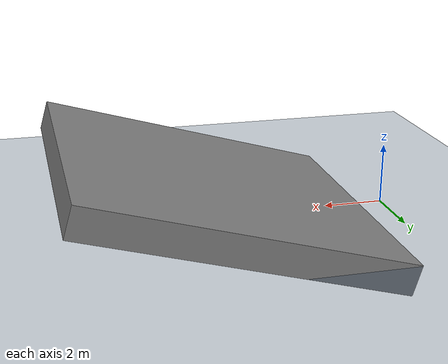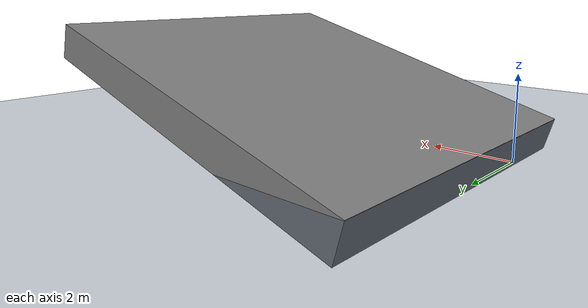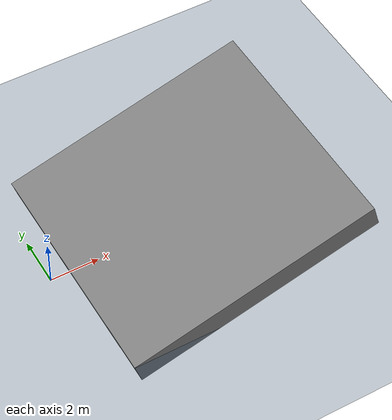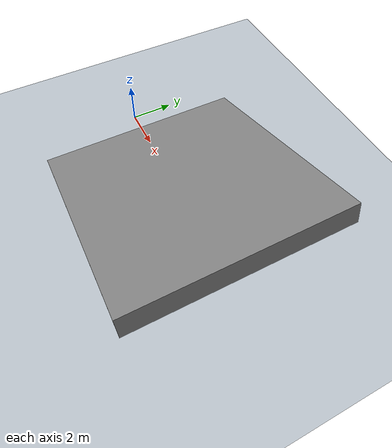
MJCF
<mujoco model="slope_4">
  <!-- Terrain Type: slope, Level: 4, Slope angle (degrees): 16.0664 -->
  <statistic center="0 0 0.1" extent="0.8" />
  <visual>
    <headlight diffuse="0.6 0.6 0.6" ambient="0.3 0.3 0.3" specular="0 0 0" />
    <rgba haze="0.15 0.25 0.35 1" />
    <global azimuth="-130" elevation="-20" />
  </visual>
  <asset>
    <texture type="skybox" builtin="gradient" rgb1="0.3 0.5 0.7" rgb2="0 0 0" width="512" height="3072" />
    <texture type="2d" name="groundplane" builtin="checker" mark="edge" rgb1="0.2 0.3 0.4" rgb2="0.1 0.2 0.3" markrgb="0.8 0.8 0.8" width="300" height="300" />
    <material name="groundplane" texture="groundplane" texuniform="true" texrepeat="5 5" reflectance="0.0" />
  </asset>
  <worldbody>
    <light pos="0 0 1.5" dir="0 0 -1" directional="true" />
    <geom name="floor" size="0 0 0.05" type="plane" material="groundplane" />
    <geom pos="5.938375592151506 0.0 0.9595291939183819" type="box" size="5.20322976621252 5.0 0.5" quat="0.9901872580889023 0.0 -0.13974689233890575 0.0" />
  </worldbody>
</mujoco>
